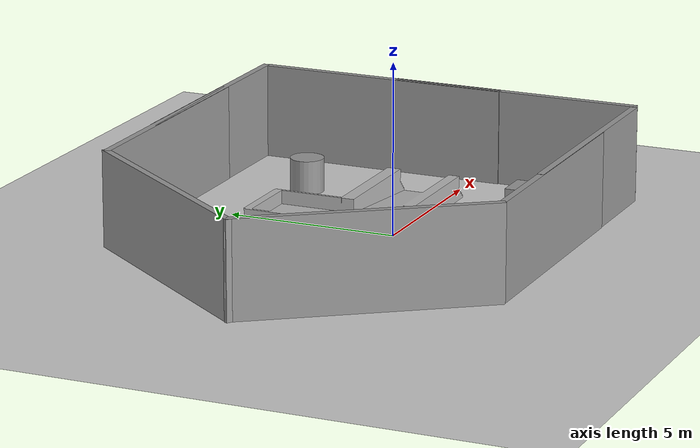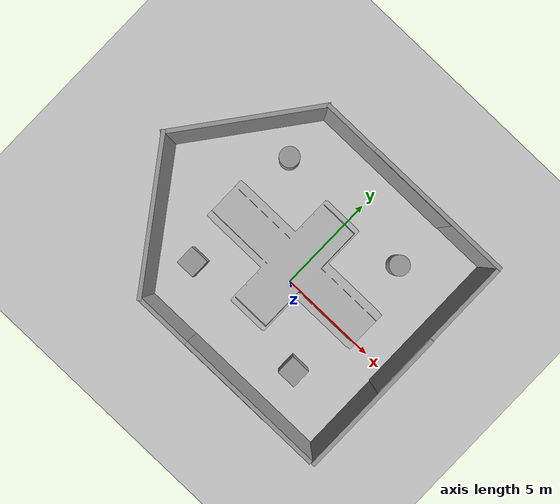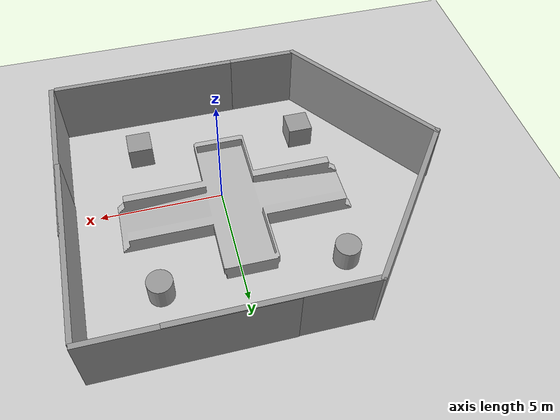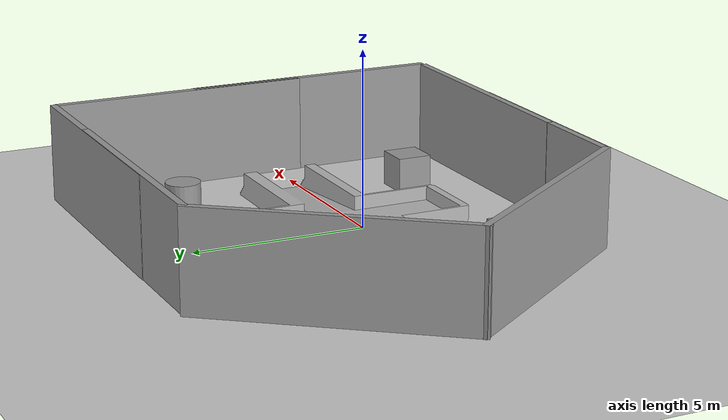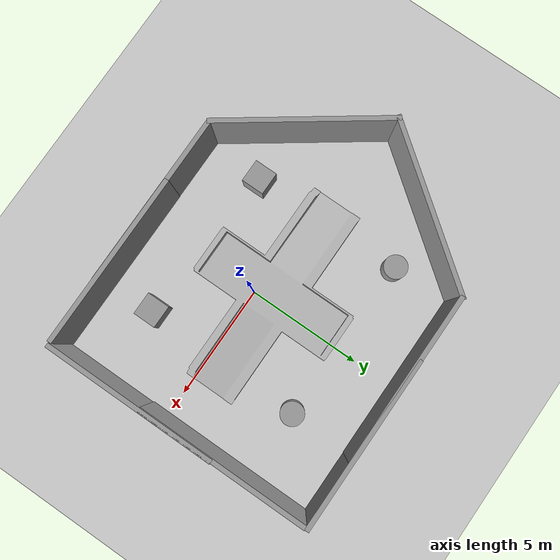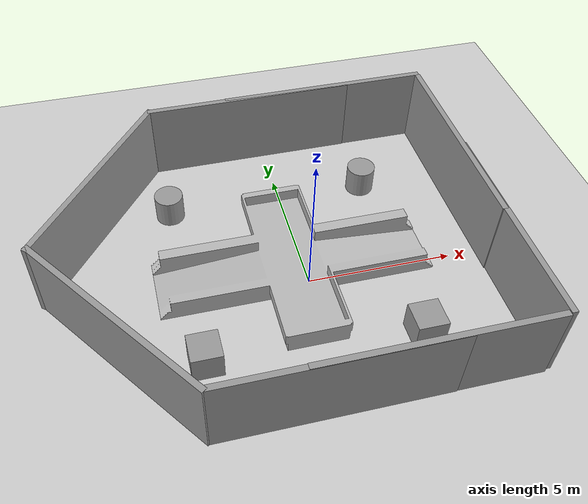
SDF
<sdf version="1.6">
 <world name="default">
  <light name="sun" type="directional">
   <pose>0 0 10 0 -0 0</pose>
   <diffuse>0.8 0.8 0.8 1</diffuse>
   <specular>0.2 0.2 0.2 1</specular>
   <attenuation>
    <range>1000</range>
    <constant>0.9</constant>
    <linear>0.01</linear>
    <quadratic>0.001</quadratic>
   </attenuation>
   <direction>-0.5 0.1 -0.9</direction>
  </light>
  <model name="ground_plane">
   <static>1</static>
   <link name="link">
    <collision name="collision">
     <geometry><plane><normal>0 0 1</normal><size>100 100</size></plane></geometry>
     <surface>
      <contact><collide_bitmask>65535</collide_bitmask></contact>
      <friction><ode><mu>100</mu><mu2>50</mu2></ode></friction>
     </surface>
    </collision>
    <visual name="visual">
     <cast_shadows>0</cast_shadows>
     <geometry><plane><normal>0 0 1</normal><size>100 100</size></plane></geometry>
     <material>
      <script><uri>file://media/materials/scripts/gazebo.material</uri><name>Gazebo/Grey</name></script>
     </material>
    </visual>
   </link>
  </model>
  <gravity>0 0 -9.8</gravity>
  <magnetic_field>6e-06 2.3e-05 -4.2e-05</magnetic_field>
  <atmosphere type="adiabatic"/>
  <physics name="default_physics" default="0" type="ode">
   <max_step_size>0.001</max_step_size>
   <real_time_factor>1</real_time_factor>
   <real_time_update_rate>1000</real_time_update_rate>
  </physics>
  <scene><ambient>0.4 0.4 0.4 1</ambient><background>0.7 0.7 0.7 1</background><shadows>1</shadows></scene>
  <audio><device>default</device></audio>
  <spherical_coordinates>
   <surface_model>EARTH_WGS84</surface_model>
   <latitude_deg>0</latitude_deg>
   <longitude_deg>0</longitude_deg>
   <elevation>0</elevation>
   <heading_deg>0</heading_deg>
  </spherical_coordinates>
  <model name="environment">
   <static>1</static>
   <link name="base">
    <visual name="visual">
     <geometry>
      <mesh><uri>model://slope_environment/meshes/slope_environment.stl</uri><scale>0.8 0.8 0.8</scale></mesh>
     </geometry>
    </visual>
    <collision name="environment_collision">
     <geometry>
      <mesh><uri>model://slope_environment/meshes/slope_environment.stl</uri><scale>0.8 0.8 0.8</scale></mesh>
     </geometry>
     <surface><friction><ode><mu>0.5</mu><mu2>0.25</mu2></ode></friction></surface>
    </collision>
   </link>
   <pose>-4.58012 2.27498 -1.20452 1.57 -0 0</pose>
  </model>
  <model name="grey_wall">
   <static>1</static>
   <link name="link">
    <pose>0 0 1.4 0 -0 0</pose>
    <collision name="collision"><geometry><box><size>7.5 0.2 2.8</size></box></geometry></collision>
    <visual name="visual">
     <cast_shadows>0</cast_shadows>
     <geometry><box><size>7.5 0.2 2.8</size></box></geometry>
     <material>
      <script>
       <uri>model://grey_wall/materials/scripts</uri>
       <uri>model://grey_wall/materials/textures</uri>
       <name>vrc/grey_wall</name>
      </script>
     </material>
    </visual>
   </link>
   <pose>-0.619282 -4.96997 -0.00603 0 -0 0</pose>
  </model>
  <model name="grey_wall_clone">
   <static>1</static>
   <link name="link">
    <pose>0 0 1.4 0 -0 0</pose>
    <collision name="collision"><geometry><box><size>7.5 0.2 2.8</size></box></geometry></collision>
    <visual name="visual">
     <cast_shadows>0</cast_shadows>
     <geometry><box><size>7.5 0.2 2.8</size></box></geometry>
     <material>
      <script>
       <uri>model://grey_wall/materials/scripts</uri>
       <uri>model://grey_wall/materials/textures</uri>
       <name>vrc/grey_wall</name>
      </script>
     </material>
    </visual>
   </link>
   <pose>2.22174 -4.95733 0 0 -0 0</pose>
  </model>
  <model name="grey_wall_clone_0">
   <static>1</static>
   <link name="link">
    <pose>0 0 1.4 0 -0 0</pose>
    <collision name="collision"><geometry><box><size>7.5 0.2 2.8</size></box></geometry></collision>
    <visual name="visual">
     <cast_shadows>0</cast_shadows>
     <geometry><box><size>7.5 0.2 2.8</size></box></geometry>
     <material>
      <script>
       <uri>model://grey_wall/materials/scripts</uri>
       <uri>model://grey_wall/materials/textures</uri>
       <name>vrc/grey_wall</name>
      </script>
     </material>
    </visual>
   </link>
   <pose>2.37687 6.77459 0 0 -0 0</pose>
  </model>
  <model name="grey_wall_clone_1">
   <static>1</static>
   <link name="link">
    <pose>0 0 1.4 0 -0 0</pose>
    <collision name="collision"><geometry><box><size>7.5 0.2 2.8</size></box></geometry></collision>
    <visual name="visual">
     <cast_shadows>0</cast_shadows>
     <geometry><box><size>7.5 0.2 2.8</size></box></geometry>
     <material>
      <script>
       <uri>model://grey_wall/materials/scripts</uri>
       <uri>model://grey_wall/materials/textures</uri>
       <name>vrc/grey_wall</name>
      </script>
     </material>
    </visual>
   </link>
   <pose>-0.488174 6.75701 0 0 -0 0</pose>
  </model>
  <model name="grey_wall_clone_0_clone_0">
   <static>1</static>
   <link name="link">
    <pose>0 0 1.4 0 -0 0</pose>
    <collision name="collision"><geometry><box><size>7.5 0.2 2.8</size></box></geometry></collision>
    <visual name="visual">
     <cast_shadows>0</cast_shadows>
     <geometry><box><size>7.5 0.2 2.8</size></box></geometry>
     <material>
      <script>
       <uri>model://grey_wall/materials/scripts</uri>
       <uri>model://grey_wall/materials/textures</uri>
       <name>vrc/grey_wall</name>
      </script>
     </material>
    </visual>
   </link>
   <pose>-6.45528 -1.99259 0 0 -0 2.19165</pose>
  </model>
  <model name="grey_wall_clone_0_clone_0_clone">
   <static>1</static>
   <link name="link">
    <pose>0 0 1.4 0 -0 0</pose>
    <collision name="collision"><geometry><box><size>7.5 0.2 2.8</size></box></geometry></collision>
    <visual name="visual">
     <cast_shadows>0</cast_shadows>
     <geometry><box><size>7.5 0.2 2.8</size></box></geometry>
     <material>
      <script>
       <uri>model://grey_wall/materials/scripts</uri>
       <uri>model://grey_wall/materials/textures</uri>
       <name>vrc/grey_wall</name>
      </script>
     </material>
    </visual>
   </link>
   <pose>-6.38908 3.86244 0 0 -0 0.922875</pose>
  </model>
  <model name="grey_wall_clone_0_clone_0_clone_0">
   <static>1</static>
   <link name="link">
    <pose>0 0 1.4 0 -0 0</pose>
    <collision name="collision"><geometry><box><size>7.5 0.2 2.8</size></box></geometry></collision>
    <visual name="visual">
     <cast_shadows>0</cast_shadows>
     <geometry><box><size>7.5 0.2 2.8</size></box></geometry>
     <material>
      <script>
       <uri>model://grey_wall/materials/scripts</uri>
       <uri>model://grey_wall/materials/textures</uri>
       <name>vrc/grey_wall</name>
      </script>
     </material>
    </visual>
   </link>
   <pose>6.09759 -1.23022 0 0 -0 1.57097</pose>
  </model>
  <model name="grey_wall_clone_0_clone_0_clone_1">
   <static>1</static>
   <link name="link">
    <pose>0 0 1.4 0 -0 0</pose>
    <collision name="collision"><geometry><box><size>7.5 0.2 2.8</size></box></geometry></collision>
    <visual name="visual">
     <cast_shadows>0</cast_shadows>
     <geometry><box><size>7.5 0.2 2.8</size></box></geometry>
     <material>
      <script>
       <uri>model://grey_wall/materials/scripts</uri>
       <uri>model://grey_wall/materials/textures</uri>
       <name>vrc/grey_wall</name>
      </script>
     </material>
    </visual>
   </link>
   <pose>6.06309 2.9623 0 0 -0 1.57097</pose>
  </model>
  <model name="unit_box">
   <pose>2.95527 -2.87575 0.499995 -1e-05 -0 -0</pose>
   <link name="link">
    <inertial>
     <mass>1</mass>
     <inertia>
      <ixx>0.166667</ixx>
      <ixy>0</ixy>
      <ixz>0</ixz>
      <iyy>0.166667</iyy>
      <iyz>0</iyz>
      <izz>0.166667</izz>
     </inertia>
    </inertial>
    <collision name="collision"><geometry><box><size>1 1 1</size></box></geometry></collision>
    <visual name="visual">
     <geometry><box><size>1 1 1</size></box></geometry>
     <material>
      <script><name>Gazebo/Grey</name><uri>file://media/materials/scripts/gazebo.material</uri></script>
     </material>
    </visual>
   </link>
  </model>
  <model name="unit_box_0">
   <pose>-3.92649 -2.43625 0.499995 0 1e-05 0</pose>
   <link name="link">
    <inertial>
     <mass>1</mass>
     <inertia>
      <ixx>0.166667</ixx>
      <ixy>0</ixy>
      <ixz>0</ixz>
      <iyy>0.166667</iyy>
      <iyz>0</iyz>
      <izz>0.166667</izz>
     </inertia>
    </inertial>
    <collision name="collision"><geometry><box><size>1 1 1</size></box></geometry></collision>
    <visual name="visual">
     <geometry><box><size>1 1 1</size></box></geometry>
     <material>
      <script><name>Gazebo/Grey</name><uri>file://media/materials/scripts/gazebo.material</uri></script>
     </material>
    </visual>
   </link>
  </model>
  <model name="unit_cylinder">
   <pose>-4.03001 4.16879 0.499994 -3e-06 -2e-06 0</pose>
   <link name="link">
    <inertial>
     <mass>1</mass>
     <inertia><ixx>0.145833</ixx><ixy>0</ixy><ixz>0</ixz><iyy>0.145833</iyy><iyz>0</iyz><izz>0.125</izz></inertia>
    </inertial>
    <collision name="collision">
     <geometry><cylinder><radius>0.5</radius><length>1</length></cylinder></geometry>
    </collision>
    <visual name="visual">
     <geometry><cylinder><radius>0.5</radius><length>1</length></cylinder></geometry>
     <material>
      <script><name>Gazebo/Grey</name><uri>file://media/materials/scripts/gazebo.material</uri></script>
     </material>
    </visual>
   </link>
  </model>
  <model name="unit_cylinder_0">
   <pose>3.10634 4.06181 0.5 0 -0 0</pose>
   <link name="link">
    <inertial>
     <mass>1</mass>
     <inertia><ixx>0.145833</ixx><ixy>0</ixy><ixz>0</ixz><iyy>0.145833</iyy><iyz>0</iyz><izz>0.125</izz></inertia>
    </inertial>
    <collision name="collision">
     <geometry><cylinder><radius>0.5</radius><length>1</length></cylinder></geometry>
    </collision>
    <visual name="visual">
     <geometry><cylinder><radius>0.5</radius><length>1</length></cylinder></geometry>
     <material>
      <script><name>Gazebo/Grey</name><uri>file://media/materials/scripts/gazebo.material</uri></script>
     </material>
    </visual>
   </link>
  </model>
 </world>
</sdf>
